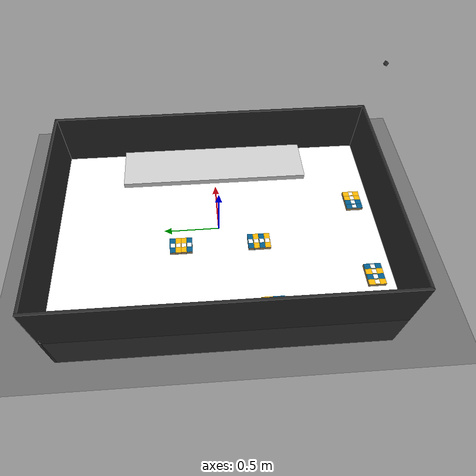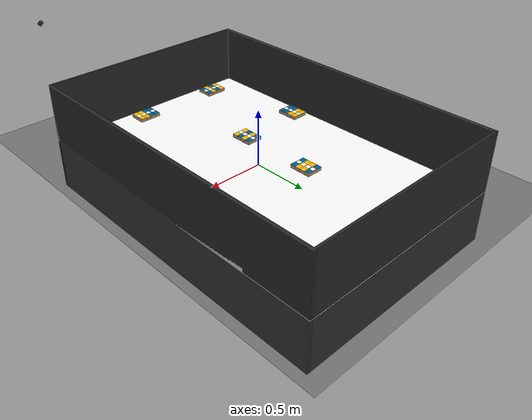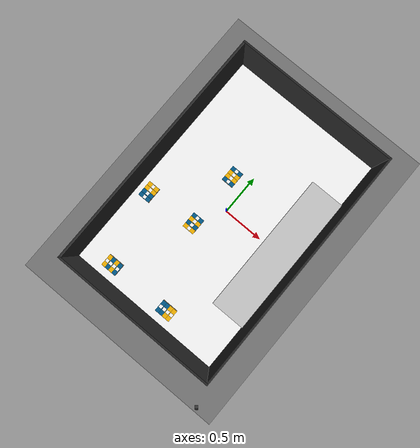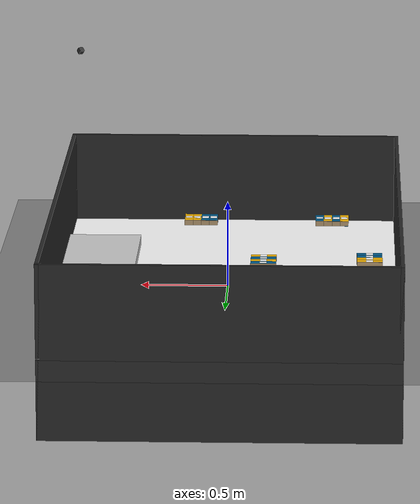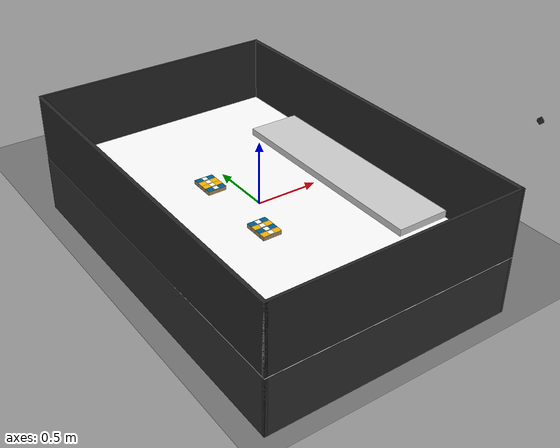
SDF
<sdf version="1.9">
 <world name="eurobot_2026_arena">
  <background><color>0.7 0.7 0.7 1</color></background>
  <light type="directional" name="sun">
   <diffuse>1 1 1 1</diffuse>
   <specular>0.5 0.5 0.5 1</specular>
   <direction>-0.5 0.5 -1</direction>
  </light>
  <gravity>0 0 -9.81</gravity>
  <physics type="ode"><max_step_size>0.001</max_step_size><real_time_factor>1</real_time_factor></physics>
  <plugin filename="libignition-gazebo-physics-system.so" name="ignition::gazebo::systems::Physics"/>
  <plugin filename="libignition-gazebo-user-commands-system.so" name="ignition::gazebo::systems::UserCommands"/>
  <plugin filename="libignition-gazebo-scene-broadcaster-system.so" name="ignition::gazebo::systems::SceneBroadcaster"/>
  <plugin filename="libignition-gazebo-sensors-system.so" name="ignition::gazebo::systems::Sensors">
   <render_engine>ogre2</render_engine>
  </plugin>
  <model name="left_corner_cam">
   <static>true</static>
   <pose>0.950 -1.550 1.05 0 0.6981 2.2309</pose>
   <link name="link">
    <visual name="body">
     <geometry><box><size>0.03 0.03 0.03</size></box></geometry>
     <material><diffuse>0.2 0.2 0.2 1</diffuse></material>
    </visual>
    <sensor name="left_corner_cam_sensor" type="camera">
     <always_on>true</always_on>
     <update_rate>15</update_rate>
     <visualize>true</visualize>
     <camera>
      <horizontal_fov>1.047</horizontal_fov>
      <image><width>1280</width><height>1280</height><format>RGB_INT8</format></image>
      <clip><near>0.05</near><far>50.0</far></clip>
     </camera>
     <topic>left_cam/image_raw</topic>
    </sensor>
   </link>
  </model>
  <model name="ground_plane">
   <static>true</static>
   <link name="link">
    <collision name="collision"><geometry><plane><normal>0 0 1</normal></plane></geometry></collision>
    <visual name="visual">
     <geometry><plane><normal>0 0 1</normal><size>20 20</size></plane></geometry>
     <material><ambient>0.8 0.8 0.8 1</ambient><diffuse>0.2 0.2 0.2 1</diffuse></material>
    </visual>
   </link>
  </model>
  <include><uri>model://mat</uri><static>true</static></include>
  <include><uri>model://crate</uri><name>crate1</name><pose>-0.675 -1.30 0.05 0 3.1415 1.5708</pose></include>
  <include><uri>model://crate</uri><name>crate2</name><pose>-0.625 -1.30 0.05 0 0 1.5708</pose></include>
  <include><uri>model://crate</uri><name>crate3</name><pose>-0.575 -1.30 0.05 0 3.1415 1.5708</pose></include>
  <include><uri>model://crate</uri><name>crate4</name><pose>-0.525 -1.30 0.05 0 0 1.5708</pose></include>
  <include><uri>model://crate</uri><name>crate5</name><pose>0.125 -1.30 0.05 0 0 1.5708</pose></include>
  <include><uri>model://crate</uri><name>crate6</name><pose>0.175 -1.30 0.05 0 0 1.5708</pose></include>
  <include><uri>model://crate</uri><name>crate7</name><pose>0.225 -1.30 0.05 0 3.1415 1.5708</pose></include>
  <include><uri>model://crate</uri><name>crate8</name><pose>0.275 -1.30 0.05 0 3.1415 1.5708</pose></include>
  <include><uri>model://crate</uri><name>crate9</name><pose>-0.2 -0.275 0.05 0 0 0</pose></include>
  <include><uri>model://crate</uri><name>crate10</name><pose>-0.2 -0.325 0.05 0 3.1415 0</pose></include>
  <include><uri>model://crate</uri><name>crate11</name><pose>-0.2 -0.375 0.05 0 0 0</pose></include>
  <include><uri>model://crate</uri><name>crate12</name><pose>-0.2 -0.425 0.05 0 3.1415 0</pose></include>
  <include><uri>model://crate</uri><name>crate13</name><pose>-0.2 0.275 0.05 0 0 0</pose></include>
  <include><uri>model://crate</uri><name>crate14</name><pose>-0.2 0.325 0.05 0 3.1415 0</pose></include>
  <include><uri>model://crate</uri><name>crate15</name><pose>-0.2 0.375 0.05 0 3.1415 0</pose></include>
  <include><uri>model://crate</uri><name>crate16</name><pose>-0.2 0.425 0.05 0 0 0</pose></include>
  <include><uri>model://crate</uri><name>crate17</name><pose>-0.825 -0.325 0.05 0 3.1415 0</pose></include>
  <include><uri>model://crate</uri><name>crate18</name><pose>-0.825 -0.375 0.05 0 3.1415 0</pose></include>
  <include><uri>model://crate</uri><name>crate19</name><pose>-0.825 -0.425 0.05 0 0 0</pose></include>
  <include><uri>model://crate</uri><name>crate20</name><pose>-0.825 -0.475 0.05 0 0 0</pose></include>
 </world>
</sdf>

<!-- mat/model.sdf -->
<sdf version="1.9">
  <!-- Aire de jeu 3000 x 2000 mm avec bordures 70 mm (h) x 22 mm (ép) incluses -->
  <model name="floor_mat">
    <static>true</static>

    <link name="floor_link">
      <!-- ===== Tapis (2 x 3 x 0.007 m) ===== -->
      <collision name="mat_collision">
        <geometry>
          <box><size>2 3 0.007</size></box>
        </geometry>
        <surface>
          <friction><ode><mu>0.9</mu><mu2>0.9</mu2></ode></friction>
        </surface>
      </collision>

      <visual name="mat_visual">
        <geometry>
          <box><size>2 3 0.007</size></box>
        </geometry>
        <material>
          <diffuse>1 1 1 1</diffuse>
          <pbr>
            <metal>
              <albedo_map>file://models/mat/table.png</albedo_map>
              <metalness>0.0</metalness>
              <roughness>0.8</roughness>
            </metal>
          </pbr>
        </material>
      </visual>

      <!-- ===== Plateforme centrale (450 x 1800 x 55 mm) ===== -->
      <collision name="platform_collision">
        <pose>0.775 0.0 0.031 0 0 0</pose>
        <geometry>
          <box><size>0.45 1.8 0.055</size></box>
        </geometry>
        <surface>
          <friction><ode><mu>0.9</mu><mu2>0.9</mu2></ode></friction>
        </surface>
      </collision>

      <visual name="platform_visual">
        <pose>0.775 0.0 0.031 0 0 0</pose>
        <geometry>
          <box><size>0.45 1.8 0.055</size></box>
        </geometry>
        <material>
          <diffuse>0.8 0.8 0.8 1</diffuse>
          <pbr><metal><metalness>0.0</metalness><roughness>0.9</roughness></metal></pbr>
        </material>
      </visual>

      <!-- Longue +X -->
      <collision name="border_long_posX_collision">
        <pose>0.989 0 0.0385 0 0 0</pose>
        <geometry><box><size>0.022 3.0 1</size></box></geometry>
        <surface><friction><ode><mu>0.9</mu><mu2>0.9</mu2></ode></friction></surface>
      </collision>
      <visual name="border_long_posX_visual">
        <pose>0.989 0 0.0385 0 0 0</pose>
        <geometry><box><size>0.022 3.0 1</size></box></geometry>
        <material><diffuse>0.15 0.15 0.15 1</diffuse></material>
      </visual>

      <!-- Longue -X -->
      <collision name="border_long_negX_collision">
        <pose>-0.989 0 0.0385 0 0 0</pose>
        <geometry><box><size>0.022 3.0 1</size></box></geometry>
        <surface><friction><ode><mu>0.9</mu><mu2>0.9</mu2></ode></friction></surface>
      </collision>
      <visual name="border_long_negX_visual">
        <pose>-0.989 0 0.0385 0 0 0</pose>
        <geometry><box><size>0.022 3.0 1</size></box></geometry>
        <material><diffuse>0.15 0.15 0.15 1</diffuse></material>
      </visual>

      <!-- Courte +Y -->
      <collision name="border_short_posY_collision">
        <pose>0 1.489 0.0385 0 0 0</pose>
        <geometry><box><size>2.0 0.022 1</size></box></geometry>
        <surface><friction><ode><mu>0.9</mu><mu2>0.9</mu2></ode></friction></surface>
      </collision>
      <visual name="border_short_posY_visual">
        <pose>0 1.489 0.0385 0 0 0</pose>
        <geometry><box><size>2.0 0.022 1</size></box></geometry>
        <material><diffuse>0.15 0.15 0.15 1</diffuse></material>
      </visual>

      <!-- Courte -Y -->
      <collision name="border_short_negY_collision">
        <pose>0 -1.489 0.0385 0 0 0</pose>
        <geometry><box><size>2.0 0.022 1</size></box></geometry>
        <surface><friction><ode><mu>0.9</mu><mu2>0.9</mu2></ode></friction></surface>
      </collision>
      <visual name="border_short_negY_visual">
        <pose>0 -1.489 0.0385 0 0 0</pose>
        <geometry><box><size>2.0 0.022 1</size></box></geometry>
        <material><diffuse>0.15 0.15 0.15 1</diffuse></material>
      </visual>

    </link>
  </model>
</sdf>

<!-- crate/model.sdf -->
<sdf version="1.9">
  <model name="crate_nuts" canonical_link="body">
    <static>false</static>

    <link name="body">
      <!-- Inertial properties (m = 0.17 kg; a=0.15, b=0.05, c=0.03 m) -->
      <inertial>
        <mass>0.17</mass>
        <inertia>
          <!-- Ixx = 1/12 m (b^2 + c^2) -->
          <ixx>0.000048167</ixx>
          <!-- Iyy = 1/12 m (a^2 + c^2) -->
          <iyy>0.000331500</iyy>
          <!-- Izz = 1/12 m (a^2 + b^2) -->
          <izz>0.000354167</izz>
          <ixy>0</ixy>
          <ixz>0</ixz>
          <iyz>0</iyz>
        </inertia>
      </inertial>

      <!-- Collision -->
      <collision name="collision">
        <geometry>
          <box>
            <size>0.15 0.05 0.03</size>
          </box>
        </geometry>
        <surface>
          <friction>
            <ode>
              <mu>1.0</mu>
              <mu2>1.0</mu2>
            </ode>
          </friction>
          <contact>
            <ode>
              <kp>1e6</kp>
              <kd>1</kd>
              <max_vel>0.1</max_vel>
              <min_depth>0.001</min_depth>
            </ode>
          </contact>
          <bounce>
            <restitution_coefficient>0.0</restitution_coefficient>
            <threshold>1e6</threshold>
          </bounce>
        </surface>
      </collision>

      <!-- Visual 1: base bois -->
      <visual name="visual_wood">
        <geometry>
          <box>
            <size>0.15 0.05 0.03</size>
          </box>
        </geometry>
        <material>
          <ambient>0.65 0.55 0.40 1</ambient>
          <diffuse>0.65 0.55 0.40 1</diffuse>
          <specular>0.2 0.2 0.2 1</specular>
        </material>
      </visual>

      <!-- Visual 2: face +Z (dessus) peinte BLEUE -->
      <visual name="top_blue_xy">
        <!-- pose: x y z R P Y -->
        <pose>0 0 0.0155 0 0 0</pose>
        <geometry>
          <!-- plaque fine parallèle au plan XY -->
          <box>
            <size>0.15 0.05 0.0005</size>
          </box>
        </geometry>
        <material>
          <ambient>0.00 0.36 0.55 1</ambient>
          <diffuse>0.00 0.36 0.55 1</diffuse>
          <specular>0.2 0.2 0.2 1</specular>
        </material>
        <cast_shadows>false</cast_shadows>
      </visual>

      <!-- Visual 3: face -Z (dessous) peinte JAUNE cahque face fait 0.0005 donc on a plus 0.001 sur la hauteur des crates-->
      <visual name="bottom_yellow_xy">
        <pose>0 0 -0.0155 0 0 0</pose>
        <geometry>
          <box>
            <size>0.15 0.05 0.0005</size>
          </box>
        </geometry>
        <material>
          <ambient>0.97 0.71 0.00 1</ambient>
          <diffuse>0.97 0.71 0.00 1</diffuse>
          <specular>0.2 0.2 0.2 1</specular>
        </material>
        <cast_shadows>false</cast_shadows>
      </visual>

      <visual name="aruco_top">
        <pose>0 0 0.016 0 0 0</pose>
        <cast_shadows>false</cast_shadows>
        <geometry>
          <plane>
            <size>0.04 0.04</size>
            <normal>0 0 1</normal>
            <texture>
              <size>0.03 0.03</size>
            </texture>
          </plane>
        </geometry>
        <material>
          <diffuse>1 1 1 1</diffuse>
          <pbr>
            <metal>
              <albedo_map>file://models/crate/aruco_36.png</albedo_map>
            </metal>
          </pbr>
          <double_sided>true</double_sided>
        </material>
      </visual>

      <visual name="aruco_bottom">  <!-- faudrait que je rajoute le vynile, does it really matter? -->
        <pose>0 0 -0.016 0 0 0</pose>
        <cast_shadows>false</cast_shadows>
        <geometry>
          <plane>
            <size>0.04 0.04</size>
            <normal>0 0 1</normal>
            <texture>
              <size>0.03 0.03</size>
            </texture>
          </plane>
        </geometry>
        <material>
          <diffuse>1 1 1 1</diffuse>
          <pbr>
            <metal>
              <albedo_map>file://models/crate/aruco_47.png</albedo_map>
            </metal>
          </pbr>
          <double_sided>true</double_sided>
        </material>
      </visual>

    </link>
  </model>
</sdf>
